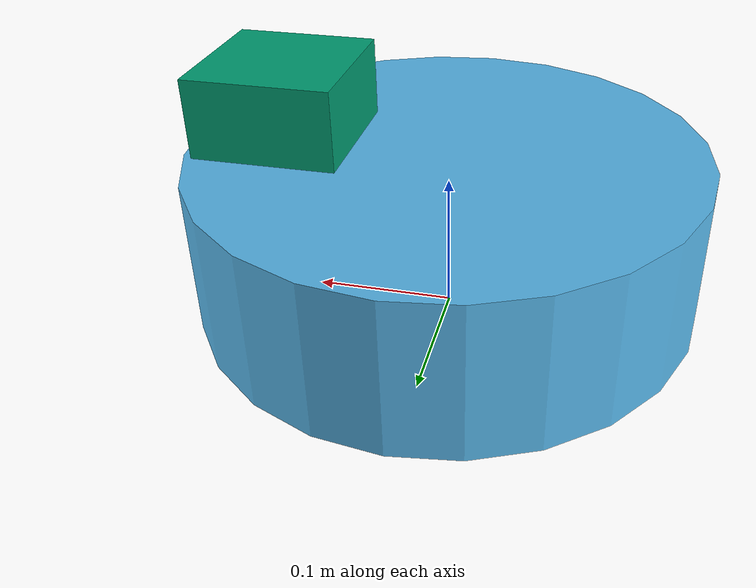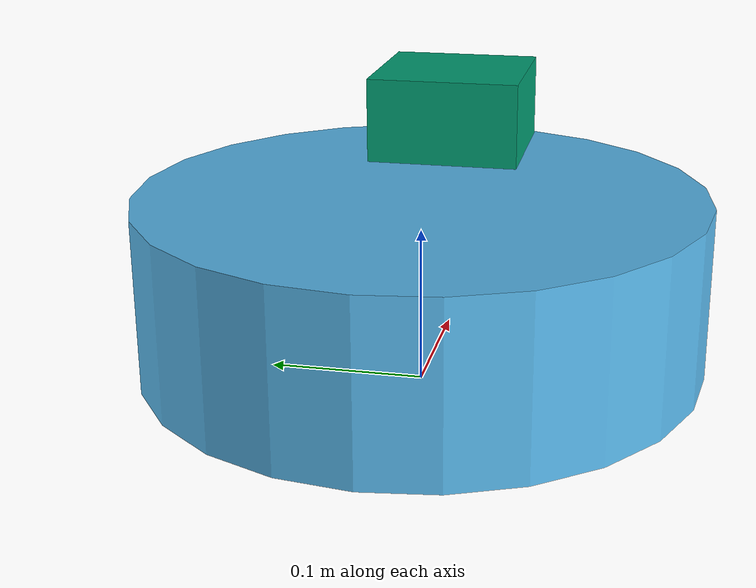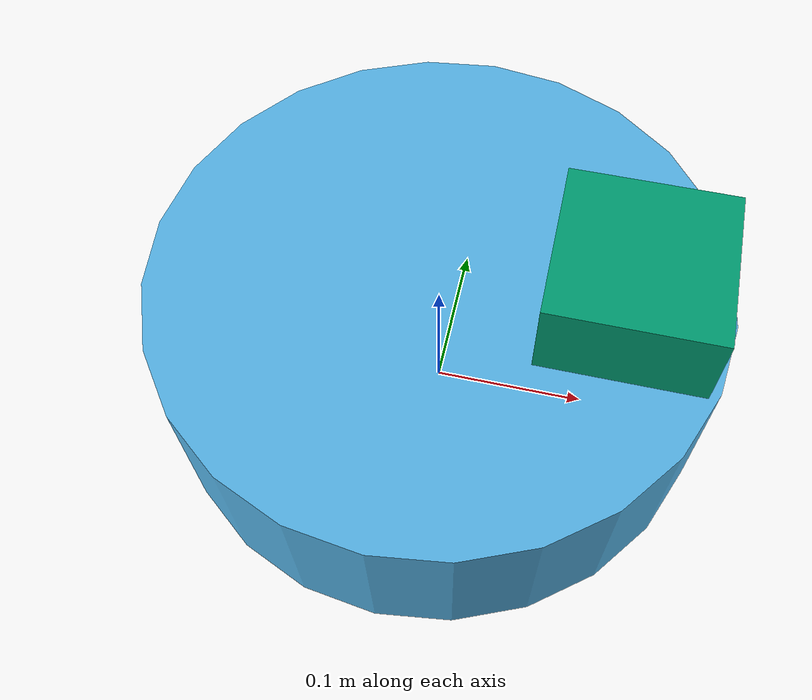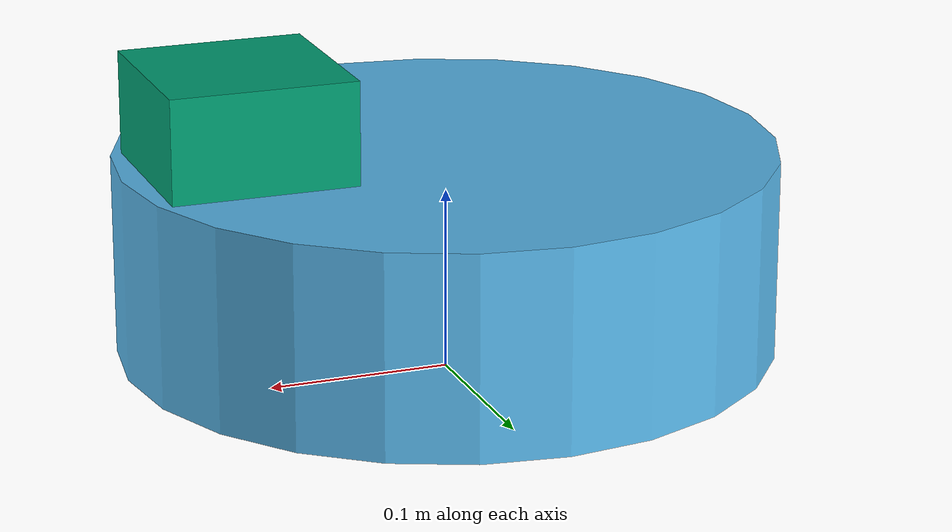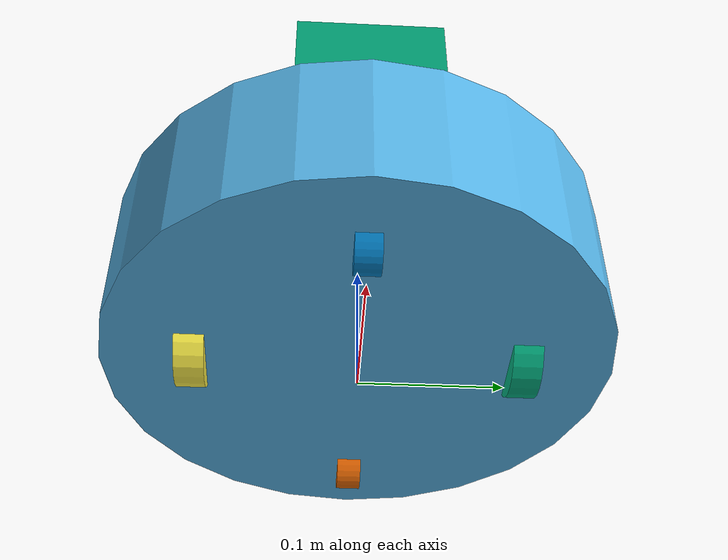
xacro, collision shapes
<?xml version="1.0"?>

<!-- jplaced@unizar.es
 2022, Universidad de Zaragoza -->

<!-- Robot standalone -->

<robot  name="kobuki_standalone"
        xmlns:sensor="http://playerstage.sourceforge.net/gazebo/xmlschema/#sensor"
        xmlns:controller="http://playerstage.sourceforge.net/gazebo/xmlschema/#controller"
        xmlns:interface="http://playerstage.sourceforge.net/gazebo/xmlschema/#interface"
        xmlns:xacro="http://ros.org/wiki/xacro">

  <!-- Defines the kobuki component tag. -->
  <xacro:include filename="$(find graph_d_exploration)/launch/include/urdf/kobuki.urdf.xacro" />
  <xacro:kobuki/>
</robot>

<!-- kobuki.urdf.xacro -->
<!-- jplaced@unizar.es
 2022, Universidad de Zaragoza -->

<!-- URDF of robot with laser  -->

<robot name="kobuki" xmlns:xacro="http://ros.org/wiki/xacro">
  <xacro:include filename="$(find graph_d_exploration)/launch/include/urdf/common_properties.urdf.xacro"/>
  <xacro:include filename="$(find graph_d_exploration)/launch/include/urdf/kobuki_gazebo.urdf.xacro"/>

  <!-- Kobuki -->
  <xacro:macro name="kobuki">
    <link name="base_footprint"/>
    <joint name="base_joint" type="fixed">
      <origin xyz="0 0 0.0102" rpy="0 0 0" />
      <parent link="base_footprint"/>
      <child link="base_link" />
    </joint>
    <link name="base_link">
      <visual>
        <geometry>
          <mesh filename="package://graph_d_exploration/launch/include/meshes/main_body.dae" />
        </geometry>
        <origin xyz="0.001 0 0.05199" rpy="0 0 0"/>
      </visual>
      <collision>
        <geometry>
          <cylinder length="0.10938" radius="0.178"/>
        </geometry>
        <origin xyz="0.0 0 0.05949" rpy="0 0 0"/>
      </collision>
      <inertial>
        <origin xyz="0.01 0 0"/>
        <mass value="2.4"/> <!-- 2.4/2.6 kg for small/big battery pack -->
        <inertia ixx="0.019995" ixy="0.0" ixz="0.0"
                 iyy="0.019995" iyz="0.0"
                 izz="0.03675" />
      </inertial>
    </link>

    <joint name="wheel_left_joint" type="continuous">
      <parent link="base_link"/>
      <child link="wheel_left_link"/>
      <origin xyz="0.00 ${0.23/2} 0.0250" rpy="${-M_PI/2} 0 0"/>
      <axis xyz="0 0 1"/>
    </joint>
    <link name="wheel_left_link">
      <visual>
        <geometry>
          <mesh filename="package://graph_d_exploration/launch/include/meshes/wheel.dae"/>
        </geometry>
        <origin xyz="0 0 0" rpy="0 0 0"/>
      </visual>
      <collision>
        <geometry>
          <cylinder length="0.0206" radius="0.0352"/>
        </geometry>
        <origin rpy="0 0 0" xyz="0 0 0"/>
      </collision>
      <inertial>
        <mass value="0.01" />
        <origin xyz="0 0 0" />
        <inertia ixx="0.001" ixy="0.0" ixz="0.0"
                 iyy="0.001" iyz="0.0"
                 izz="0.001" />
      </inertial>
    </link>

    <joint name="wheel_right_joint" type="continuous">
      <parent link="base_link"/>
      <child link="wheel_right_link"/>
      <origin xyz="0.00 -${0.23/2} 0.0250" rpy="${-M_PI/2} 0 0"/>
      <axis xyz="0 0 1"/>
    </joint>
    <link name="wheel_right_link">
      <visual>
        <geometry>
          <mesh filename="package://graph_d_exploration/launch/include/meshes/wheel.dae"/>
        </geometry>
        <origin xyz="0 0 0" rpy="0 0 0"/>
      </visual>
      <collision>
        <geometry>
          <cylinder length="0.0206" radius="0.0350"/>
        </geometry>
        <origin rpy="0 0 0" xyz="0 0 0"/>
      </collision>
      <inertial>
        <mass value="0.01" />
        <origin xyz="0 0 0" />
        <inertia ixx="0.001" ixy="0.0" ixz="0.0"
                 iyy="0.001" iyz="0.0"
                 izz="0.001" />
      </inertial>
    </link>

    <joint name="caster_front_joint" type="fixed">
      <parent link="base_link"/>
      <child link="caster_front_link"/>
      <origin xyz="0.115 0.0 0.007" rpy="${-M_PI/2} 0 0"/>
    </joint>
    <link name="caster_front_link">
      <collision>
        <geometry>
          <cylinder length="0.0176" radius="0.017"/>
        </geometry>
        <origin rpy="0 0 0" xyz="0 0 0"/>
      </collision>
      <inertial>
        <mass value="0.01" />
        <origin xyz="0 0 0" />
        <inertia ixx="0.001" ixy="0.0" ixz="0.0"
                 iyy="0.001" iyz="0.0"
                 izz="0.001" />
      </inertial>
    </link>

    <joint name="caster_back_joint" type="fixed">
      <parent link="base_link"/>
      <child link="caster_back_link"/>
      <origin xyz="-0.135 0.0 0.009" rpy="${-M_PI/2} 0 0"/>
    </joint>
    <link name="caster_back_link">
      <collision>
        <geometry>
          <cylinder length="0.0176" radius="0.017"/>
        </geometry>
        <origin rpy="0 0 0" xyz="0 0 0"/>
      </collision>
      <inertial>
        <mass value="0.01" />
        <origin xyz="0 0 0" />
        <inertia ixx="0.001" ixy="0.0" ixz="0.0"
                 iyy="0.001" iyz="0.0"
                 izz="0.001" />
      </inertial>
    </link>

    <!-- Kobuki's sensors -->
    <joint name="gyro_joint" type="fixed">
      <axis xyz="0 1 0"/>
      <origin xyz="0.056 0.062 0.0202" rpy="0 0 0"/>
      <parent link="base_link"/>
      <child link="gyro_link"/>
    </joint>
    <link name="gyro_link">
      <inertial>
        <mass value="0.001"/>
        <origin xyz="0 0 0" rpy="0 0 0"/>
        <inertia ixx="0.0001" ixy="0" ixz="0"
                 iyy="0.000001" iyz="0"
                 izz="0.0001"/>
      </inertial>
    </link>

    <joint name="cliff_sensor_left_joint" type="fixed">
      <origin xyz="0.08734 0.13601 0.0214" rpy="0 ${M_PI/2} 0" />
      <parent link="base_link"/>
      <child link="cliff_sensor_left_link" />
    </joint>
    <link name="cliff_sensor_left_link">
      <inertial>
        <mass value="0.0001" />
        <origin xyz="0 0 0" />
        <inertia ixx="0.0001" ixy="0.0" ixz="0.0"
                 iyy="0.0001" iyz="0.0"
                 izz="0.0001" />
      </inertial>
    </link>

    <joint name="cliff_sensor_right_joint" type="fixed">
      <origin xyz="0.085 -0.13601 0.0214" rpy="0 ${M_PI/2} 0" />
      <parent link="base_link"/>
      <child link="cliff_sensor_right_link" />
    </joint>
    <link name="cliff_sensor_right_link">
      <inertial>
        <mass value="0.0001" />
        <origin xyz="0 0 0" />
        <inertia ixx="0.0001" ixy="0.0" ixz="0.0"
                 iyy="0.0001" iyz="0.0"
                 izz="0.0001" />
      </inertial>
    </link>

    <joint name="cliff_sensor_front_joint" type="fixed">
      <origin xyz="0.156 0.00 0.0214" rpy="0 ${M_PI/2} 0" />
      <parent link="base_link"/>
      <child link="cliff_sensor_front_link" />
    </joint>
    <link name="cliff_sensor_front_link">
      <inertial>
        <mass value="0.0001" />
        <origin xyz="0 0 0" />
        <inertia ixx="0.0001" ixy="0.0" ixz="0.0"
                 iyy="0.0001" iyz="0.0"
                 izz="0.0001" />
      </inertial>
    </link>

    <!-- hokuyo -->
    <joint name="laser_joint" type="fixed">
      <origin xyz=".115 0 0.12" rpy="0 0 0" />
      <parent link="base_link" />
      <child link="base_laser_link" />
    </joint>
    <link name="base_laser_link">
      <collision>
        <origin xyz="0 0 0" rpy="0 0 0"/>
        <geometry>
      <box size="0.1 0.1 0.1"/>
        </geometry>
      </collision>
      <visual>
        <origin xyz="0 0 0" rpy="0 0 0"/>
        <geometry>
          <mesh filename="package://graph_d_exploration/launch/include/meshes/hokuyo.dae"/>
        </geometry>
      </visual>
      <inertial>
        <mass value="0.0001" />
        <origin xyz="0 0 1" rpy="0 0 0"/>
        <inertia ixx="0.0001" ixy="0.0" ixz="0.0"
                 iyy="0.0001" iyz="0.0"
                 izz="0.0001" />
     </inertial>
   </link>

    <!-- Kobuki Gazebo simulation details -->
    <xacro:kobuki_sim/>

  </xacro:macro>
</robot>
